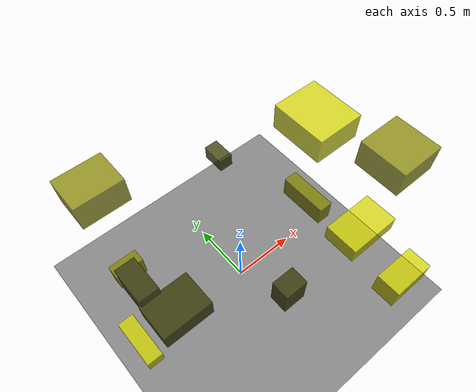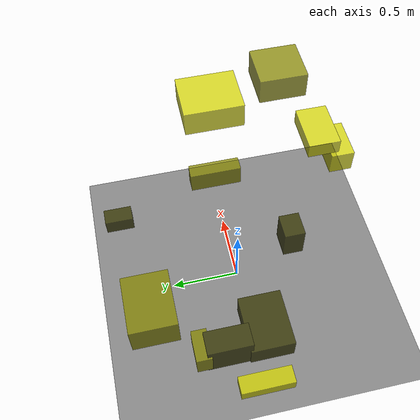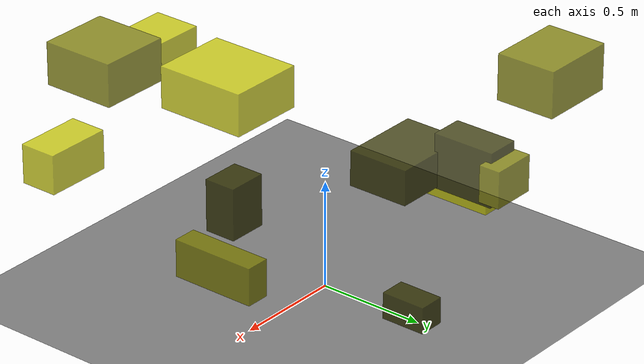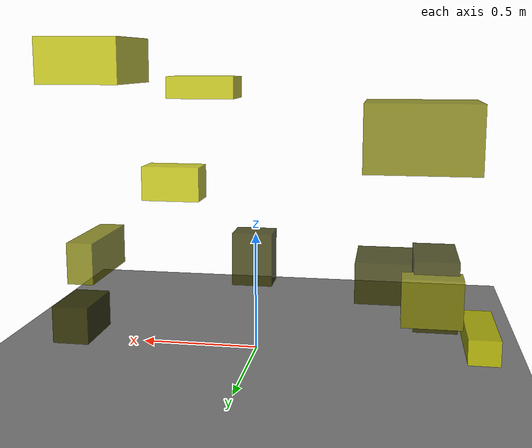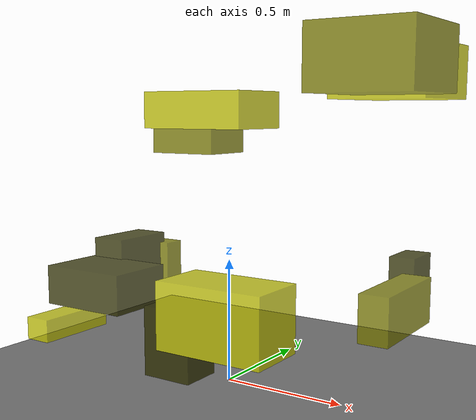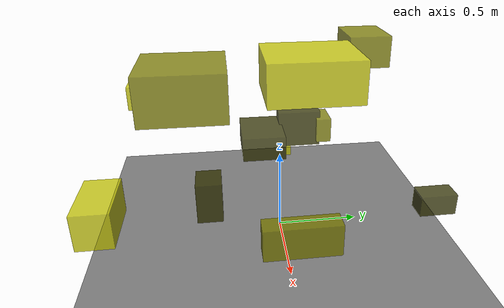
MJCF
<?xml version="1.0"?>
<mujoco model="obstacle_scene">
  <compiler angle="radian" coordinate="local"/>
  <option timestep="0.001" gravity="0 0 -9.81"/>

  <asset>
    <material name="obstacle_mat" rgba="0.8 0.8 0.0 0.8"/>
    <material name="ground_mat" rgba="0.5 0.5 0.5 1"/>
  </asset>

  <worldbody>
    <!-- Ground plane -->
    <geom name="ground" type="plane" size="3 3 0.1" material="ground_mat"/>

    <!-- Obstacles -->
    <body name="obstacle_0" pos="-0.622582 -0.051605 0.332276">
      <geom name="obs_0" type="box" size="0.201632 0.151304 0.085278" rgba="0.2 0.2 0.0 0.8"/>
    </body>
    <body name="obstacle_1" pos="-0.713069 0.412203 0.368642">
      <geom name="obs_1" type="box" size="0.109053 0.052499 0.089168" rgba="0.5 0.5 0.0 0.8"/>
    </body>
    <body name="obstacle_2" pos="-0.932187 0.010657 0.103132">
      <geom name="obs_2" type="box" size="0.062745 0.191818 0.051391" rgba="0.8 0.8 0.0 0.8"/>
    </body>
    <body name="obstacle_3" pos="-0.729457 0.235672 0.372382">
      <geom name="obs_3" type="box" size="0.081065 0.154147 0.132320" rgba="0.2 0.2 0.0 0.8"/>
    </body>
    <body name="obstacle_4" pos="0.698694 0.018809 0.394959">
      <geom name="obs_4" type="box" size="0.055331 0.197362 0.086496" rgba="0.5 0.5 0.0 0.8"/>
    </body>
    <body name="obstacle_5" pos="0.369624 -0.639409 1.090408">
      <geom name="obs_5" type="box" size="0.167046 0.107582 0.053428" rgba="0.8 0.8 0.0 0.8"/>
    </body>
    <body name="obstacle_6" pos="0.084183 -0.437638 0.291925">
      <geom name="obs_6" type="box" size="0.094499 0.076517 0.124603" rgba="0.2 0.2 0.0 0.8"/>
    </body>
    <body name="obstacle_7" pos="0.831171 -0.477155 1.231981">
      <geom name="obs_7" type="box" size="0.159116 0.166462 0.095972" rgba="0.5 0.5 0.0 0.8"/>
    </body>
    <body name="obstacle_8" pos="0.673676 0.044209 1.220689">
      <geom name="obs_8" type="box" size="0.170804 0.203409 0.093373" rgba="0.8 0.8 0.0 0.8"/>
    </body>
    <body name="obstacle_9" pos="0.445508 0.813509 0.382156">
      <geom name="obs_9" type="box" size="0.059088 0.101428 0.059482" rgba="0.2 0.2 0.0 0.8"/>
    </body>
    <body name="obstacle_10" pos="-0.650893 0.682618 0.987025">
      <geom name="obs_10" type="box" size="0.179342 0.141508 0.107745" rgba="0.5 0.5 0.0 0.8"/>
    </body>
    <body name="obstacle_11" pos="0.616301 -0.930296 0.564735">
      <geom name="obs_11" type="box" size="0.157312 0.087450 0.091947" rgba="0.8 0.8 0.0 0.8"/>
    </body>
  </worldbody>
</mujoco>
